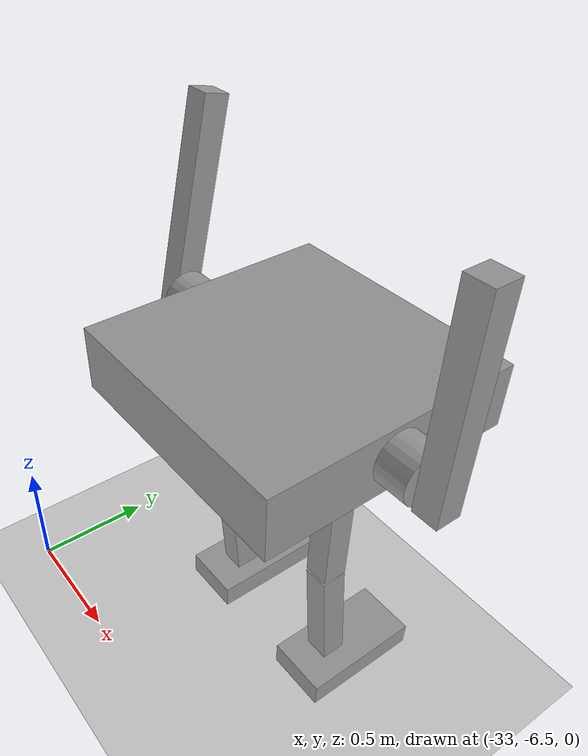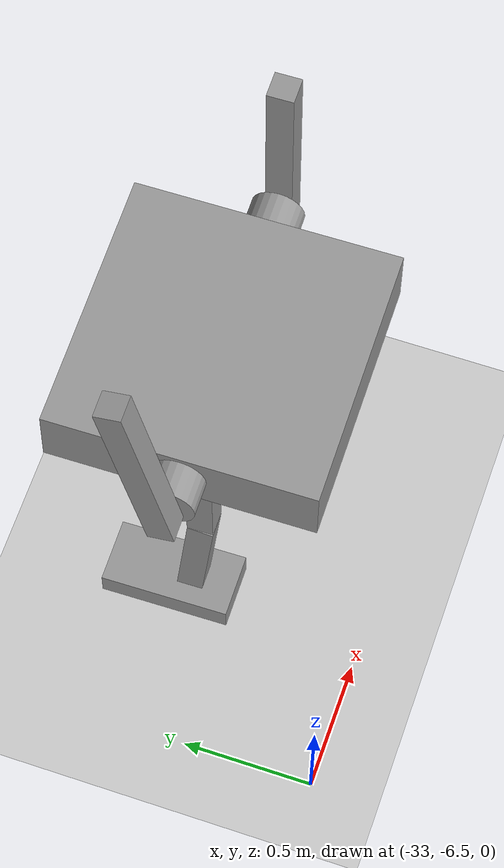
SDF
<sdf version="1.6">
 <world name="default">
  <model name="ground_plane">
   <static>1</static>
   <link name="link">
    <collision name="collision">
     <geometry><plane><normal>0 0 1</normal><size>100 100</size></plane></geometry>
     <surface><friction><ode><mu>100</mu><mu2>50</mu2></ode></friction></surface>
    </collision>
    <visual name="visual">
     <cast_shadows>0</cast_shadows>
     <geometry><plane><normal>0 0 1</normal><size>100 100</size></plane></geometry>
     <material>
      <script><uri>file://media/materials/scripts/gazebo.material</uri><name>Gazebo/Grey</name></script>
     </material>
    </visual>
   </link>
  </model>
  <model name="HumanoidRobot">
   <link name="link_0_clone">
    <inertial>
     <mass>1</mass>
     <inertia>
      <ixx>0.166667</ixx>
      <ixy>0</ixy>
      <ixz>0</ixz>
      <iyy>0.166667</iyy>
      <iyz>0</iyz>
      <izz>0.166667</izz>
     </inertia>
    </inertial>
    <pose>-0.226663 0.03903 0.1625 0 -0 0</pose>
    <visual name="visual">
     <geometry><box><size>0.25 0.5 0.1</size></box></geometry>
     <material>
      <lighting>1</lighting>
      <script><uri>file://media/materials/scripts/gazebo.material</uri><name>Gazebo/Grey</name></script>
      <shader type="pixel"><normal_map>__default__</normal_map></shader>
      <ambient>0.3 0.3 0.3 1</ambient>
      <diffuse>0.7 0.7 0.7 1</diffuse>
      <specular>0.01 0.01 0.01 1</specular>
      <emissive>0 0 0 1</emissive>
     </material>
    </visual>
    <collision name="collision">
     <geometry><box><size>0.25 0.5 0.1</size></box></geometry>
     <surface>
      <friction>
       <ode><mu>1</mu><mu2>1</mu2><fdir1>0 0 0</fdir1><slip1>0</slip1><slip2>0</slip2></ode>
       <torsional>
        <coefficient>1</coefficient>
        <patch_radius>0</patch_radius>
        <surface_radius>0</surface_radius>
        <use_patch_radius>1</use_patch_radius>
        <ode><slip>0</slip></ode>
       </torsional>
      </friction>
      <bounce><restitution_coefficient>0</restitution_coefficient><threshold>1e+06</threshold></bounce>
      <contact>
       <collide_without_contact>0</collide_without_contact>
       <collide_without_contact_bitmask>1</collide_without_contact_bitmask>
       <collide_bitmask>1</collide_bitmask>
       <ode>
        <soft_cfm>0</soft_cfm>
        <soft_erp>0.2</soft_erp>
        <kp>1e+13</kp>
        <kd>1</kd>
        <max_vel>0.01</max_vel>
        <min_depth>0</min_depth>
       </ode>
       <bullet>
        <split_impulse>1</split_impulse>
        <split_impulse_penetration_threshold>-0.01</split_impulse_penetration_threshold>
        <soft_cfm>0</soft_cfm>
        <soft_erp>0.2</soft_erp>
        <kp>1e+13</kp>
        <kd>1</kd>
       </bullet>
      </contact>
     </surface>
    </collision>
   </link>
   <link name="link_0_clone_0">
    <inertial>
     <mass>1</mass>
     <inertia>
      <ixx>0.166667</ixx>
      <ixy>0</ixy>
      <ixz>0</ixz>
      <iyy>0.166667</iyy>
      <iyz>0</iyz>
      <izz>0.166667</izz>
     </inertia>
    </inertial>
    <pose>0.373337 0.03903 0.1625 0 -0 0</pose>
    <visual name="visual">
     <geometry><box><size>0.25 0.5 0.1</size></box></geometry>
     <material>
      <lighting>1</lighting>
      <script><uri>file://media/materials/scripts/gazebo.material</uri><name>Gazebo/Grey</name></script>
      <shader type="pixel"><normal_map>__default__</normal_map></shader>
      <ambient>0.3 0.3 0.3 1</ambient>
      <diffuse>0.7 0.7 0.7 1</diffuse>
      <specular>0.01 0.01 0.01 1</specular>
      <emissive>0 0 0 1</emissive>
     </material>
    </visual>
    <collision name="collision">
     <geometry><box><size>0.25 0.5 0.1</size></box></geometry>
     <surface>
      <friction>
       <ode><mu>1</mu><mu2>1</mu2><fdir1>0 0 0</fdir1><slip1>0</slip1><slip2>0</slip2></ode>
       <torsional>
        <coefficient>1</coefficient>
        <patch_radius>0</patch_radius>
        <surface_radius>0</surface_radius>
        <use_patch_radius>1</use_patch_radius>
        <ode><slip>0</slip></ode>
       </torsional>
      </friction>
      <bounce><restitution_coefficient>0</restitution_coefficient><threshold>1e+06</threshold></bounce>
      <contact>
       <collide_without_contact>0</collide_without_contact>
       <collide_without_contact_bitmask>1</collide_without_contact_bitmask>
       <collide_bitmask>1</collide_bitmask>
       <ode>
        <soft_cfm>0</soft_cfm>
        <soft_erp>0.2</soft_erp>
        <kp>1e+13</kp>
        <kd>1</kd>
        <max_vel>0.01</max_vel>
        <min_depth>0</min_depth>
       </ode>
       <bullet>
        <split_impulse>1</split_impulse>
        <split_impulse_penetration_threshold>-0.01</split_impulse_penetration_threshold>
        <soft_cfm>0</soft_cfm>
        <soft_erp>0.2</soft_erp>
        <kp>1e+13</kp>
        <kd>1</kd>
       </bullet>
      </contact>
     </surface>
    </collision>
   </link>
   <link name="link_0_clone_1">
    <inertial>
     <mass>1</mass>
     <inertia>
      <ixx>0.166667</ixx>
      <ixy>0</ixy>
      <ixz>0</ixz>
      <iyy>0.166667</iyy>
      <iyz>0</iyz>
      <izz>0.166667</izz>
     </inertia>
    </inertial>
    <pose>0.355188 -0.06097 0.412308 0.1 -0 0</pose>
    <visual name="visual">
     <geometry><box><size>0.1 0.1 0.6</size></box></geometry>
     <material>
      <lighting>1</lighting>
      <script><uri>file://media/materials/scripts/gazebo.material</uri><name>Gazebo/Grey</name></script>
      <shader type="pixel"><normal_map>__default__</normal_map></shader>
      <ambient>0.3 0.3 0.3 1</ambient>
      <diffuse>0.7 0.7 0.7 1</diffuse>
      <specular>0.01 0.01 0.01 1</specular>
      <emissive>0 0 0 1</emissive>
     </material>
    </visual>
    <collision name="collision">
     <geometry><box><size>0.1 0.1 0.6</size></box></geometry>
     <surface>
      <friction>
       <ode><mu>1</mu><mu2>1</mu2><fdir1>0 0 0</fdir1><slip1>0</slip1><slip2>0</slip2></ode>
       <torsional>
        <coefficient>1</coefficient>
        <patch_radius>0</patch_radius>
        <surface_radius>0</surface_radius>
        <use_patch_radius>1</use_patch_radius>
        <ode><slip>0</slip></ode>
       </torsional>
      </friction>
      <bounce><restitution_coefficient>0</restitution_coefficient><threshold>1e+06</threshold></bounce>
      <contact>
       <collide_without_contact>0</collide_without_contact>
       <collide_without_contact_bitmask>1</collide_without_contact_bitmask>
       <collide_bitmask>1</collide_bitmask>
       <ode>
        <soft_cfm>0</soft_cfm>
        <soft_erp>0.2</soft_erp>
        <kp>1e+13</kp>
        <kd>1</kd>
        <max_vel>0.01</max_vel>
        <min_depth>0</min_depth>
       </ode>
       <bullet>
        <split_impulse>1</split_impulse>
        <split_impulse_penetration_threshold>-0.01</split_impulse_penetration_threshold>
        <soft_cfm>0</soft_cfm>
        <soft_erp>0.2</soft_erp>
        <kp>1e+13</kp>
        <kd>1</kd>
       </bullet>
      </contact>
     </surface>
    </collision>
   </link>
   <link name="link_0_clone_1_clone">
    <inertial>
     <mass>1</mass>
     <inertia>
      <ixx>0.166667</ixx>
      <ixy>0</ixy>
      <ixz>0</ixz>
      <iyy>0.166667</iyy>
      <iyz>0</iyz>
      <izz>0.166667</izz>
     </inertia>
    </inertial>
    <pose>0.355186 -0.090803 1.01909 0 -0 0</pose>
    <visual name="visual">
     <geometry><box><size>0.1 0.1 0.6</size></box></geometry>
     <material>
      <lighting>1</lighting>
      <script><uri>file://media/materials/scripts/gazebo.material</uri><name>Gazebo/Grey</name></script>
      <shader type="pixel"><normal_map>__default__</normal_map></shader>
      <ambient>0.3 0.3 0.3 1</ambient>
      <diffuse>0.7 0.7 0.7 1</diffuse>
      <specular>0.01 0.01 0.01 1</specular>
      <emissive>0 0 0 1</emissive>
     </material>
    </visual>
    <collision name="collision">
     <geometry><box><size>0.1 0.1 0.6</size></box></geometry>
     <surface>
      <friction>
       <ode><mu>1</mu><mu2>1</mu2><fdir1>0 0 0</fdir1><slip1>0</slip1><slip2>0</slip2></ode>
       <torsional>
        <coefficient>1</coefficient>
        <patch_radius>0</patch_radius>
        <surface_radius>0</surface_radius>
        <use_patch_radius>1</use_patch_radius>
        <ode><slip>0</slip></ode>
       </torsional>
      </friction>
      <bounce><restitution_coefficient>0</restitution_coefficient><threshold>1e+06</threshold></bounce>
      <contact>
       <collide_without_contact>0</collide_without_contact>
       <collide_without_contact_bitmask>1</collide_without_contact_bitmask>
       <collide_bitmask>1</collide_bitmask>
       <ode>
        <soft_cfm>0</soft_cfm>
        <soft_erp>0.2</soft_erp>
        <kp>1e+13</kp>
        <kd>1</kd>
        <max_vel>0.01</max_vel>
        <min_depth>0</min_depth>
       </ode>
       <bullet>
        <split_impulse>1</split_impulse>
        <split_impulse_penetration_threshold>-0.01</split_impulse_penetration_threshold>
        <soft_cfm>0</soft_cfm>
        <soft_erp>0.2</soft_erp>
        <kp>1e+13</kp>
        <kd>1</kd>
       </bullet>
      </contact>
     </surface>
    </collision>
   </link>
   <link name="link_0_clone_1_clone_0">
    <inertial>
     <mass>1</mass>
     <inertia>
      <ixx>0.166667</ixx>
      <ixy>0</ixy>
      <ixz>0</ixz>
      <iyy>0.166667</iyy>
      <iyz>0</iyz>
      <izz>0.166667</izz>
     </inertia>
    </inertial>
    <pose>-0.226658 -0.090799 1.01928 0 -0 0</pose>
    <visual name="visual">
     <geometry><box><size>0.1 0.1 0.6</size></box></geometry>
     <material>
      <lighting>1</lighting>
      <script><uri>file://media/materials/scripts/gazebo.material</uri><name>Gazebo/Grey</name></script>
      <shader type="pixel"><normal_map>__default__</normal_map></shader>
      <ambient>0.3 0.3 0.3 1</ambient>
      <diffuse>0.7 0.7 0.7 1</diffuse>
      <specular>0.01 0.01 0.01 1</specular>
      <emissive>0 0 0 1</emissive>
     </material>
    </visual>
    <collision name="collision">
     <geometry><box><size>0.1 0.1 0.6</size></box></geometry>
     <surface>
      <friction>
       <ode><mu>1</mu><mu2>1</mu2><fdir1>0 0 0</fdir1><slip1>0</slip1><slip2>0</slip2></ode>
       <torsional>
        <coefficient>1</coefficient>
        <patch_radius>0</patch_radius>
        <surface_radius>0</surface_radius>
        <use_patch_radius>1</use_patch_radius>
        <ode><slip>0</slip></ode>
       </torsional>
      </friction>
      <bounce><restitution_coefficient>0</restitution_coefficient><threshold>1e+06</threshold></bounce>
      <contact>
       <collide_without_contact>0</collide_without_contact>
       <collide_without_contact_bitmask>1</collide_without_contact_bitmask>
       <collide_bitmask>1</collide_bitmask>
       <ode>
        <soft_cfm>0</soft_cfm>
        <soft_erp>0.2</soft_erp>
        <kp>1e+13</kp>
        <kd>1</kd>
        <max_vel>0.01</max_vel>
        <min_depth>0</min_depth>
       </ode>
       <bullet>
        <split_impulse>1</split_impulse>
        <split_impulse_penetration_threshold>-0.01</split_impulse_penetration_threshold>
        <soft_cfm>0</soft_cfm>
        <soft_erp>0.2</soft_erp>
        <kp>1e+13</kp>
        <kd>1</kd>
       </bullet>
      </contact>
     </surface>
    </collision>
   </link>
   <link name="link_0_clone_1_clone_clone_clone_0">
    <inertial>
     <mass>1</mass>
     <inertia>
      <ixx>0.166667</ixx>
      <ixy>0</ixy>
      <ixz>0</ixz>
      <iyy>0.166667</iyy>
      <iyz>0</iyz>
      <izz>0.166667</izz>
     </inertia>
    </inertial>
    <pose>0.748362 -0.07674 1.75145 0 -0 0</pose>
    <visual name="visual">
     <geometry><box><size>0.1 0.1 0.8</size></box></geometry>
     <material>
      <lighting>1</lighting>
      <script><uri>file://media/materials/scripts/gazebo.material</uri><name>Gazebo/Grey</name></script>
      <shader type="pixel"><normal_map>__default__</normal_map></shader>
      <ambient>0.3 0.3 0.3 1</ambient>
      <diffuse>0.7 0.7 0.7 1</diffuse>
      <specular>0.01 0.01 0.01 1</specular>
      <emissive>0 0 0 1</emissive>
     </material>
    </visual>
    <collision name="collision">
     <geometry><box><size>0.1 0.1 0.8</size></box></geometry>
     <surface>
      <friction>
       <ode><mu>1</mu><mu2>1</mu2><fdir1>0 0 0</fdir1><slip1>0</slip1><slip2>0</slip2></ode>
       <torsional>
        <coefficient>1</coefficient>
        <patch_radius>0</patch_radius>
        <surface_radius>0</surface_radius>
        <use_patch_radius>1</use_patch_radius>
        <ode><slip>0</slip></ode>
       </torsional>
      </friction>
      <bounce><restitution_coefficient>0</restitution_coefficient><threshold>1e+06</threshold></bounce>
      <contact>
       <collide_without_contact>0</collide_without_contact>
       <collide_without_contact_bitmask>1</collide_without_contact_bitmask>
       <collide_bitmask>1</collide_bitmask>
       <ode>
        <soft_cfm>0</soft_cfm>
        <soft_erp>0.2</soft_erp>
        <kp>1e+13</kp>
        <kd>1</kd>
        <max_vel>0.01</max_vel>
        <min_depth>0</min_depth>
       </ode>
       <bullet>
        <split_impulse>1</split_impulse>
        <split_impulse_penetration_threshold>-0.01</split_impulse_penetration_threshold>
        <soft_cfm>0</soft_cfm>
        <soft_erp>0.2</soft_erp>
        <kp>1e+13</kp>
        <kd>1</kd>
       </bullet>
      </contact>
     </surface>
    </collision>
   </link>
   <link name="link_0_clone_1_clone_clone_clone_0_clone">
    <inertial>
     <mass>1</mass>
     <inertia>
      <ixx>0.166667</ixx>
      <ixy>0</ixy>
      <ixz>0</ixz>
      <iyy>0.166667</iyy>
      <iyz>0</iyz>
      <izz>0.166667</izz>
     </inertia>
    </inertial>
    <pose>-0.601678 -0.00674 1.79145 -0.2 0 0</pose>
    <visual name="visual">
     <geometry><box><size>0.1 0.1 0.8</size></box></geometry>
     <material>
      <lighting>1</lighting>
      <script><uri>file://media/materials/scripts/gazebo.material</uri><name>Gazebo/Grey</name></script>
      <shader type="pixel"><normal_map>__default__</normal_map></shader>
      <ambient>0.3 0.3 0.3 1</ambient>
      <diffuse>0.7 0.7 0.7 1</diffuse>
      <specular>0.01 0.01 0.01 1</specular>
      <emissive>0 0 0 1</emissive>
     </material>
    </visual>
    <collision name="collision">
     <geometry><box><size>0.1 0.1 0.8</size></box></geometry>
     <surface>
      <friction>
       <ode><mu>1</mu><mu2>1</mu2><fdir1>0 0 0</fdir1><slip1>0</slip1><slip2>0</slip2></ode>
       <torsional>
        <coefficient>1</coefficient>
        <patch_radius>0</patch_radius>
        <surface_radius>0</surface_radius>
        <use_patch_radius>1</use_patch_radius>
        <ode><slip>0</slip></ode>
       </torsional>
      </friction>
      <bounce><restitution_coefficient>0</restitution_coefficient><threshold>1e+06</threshold></bounce>
      <contact>
       <collide_without_contact>0</collide_without_contact>
       <collide_without_contact_bitmask>1</collide_without_contact_bitmask>
       <collide_bitmask>1</collide_bitmask>
       <ode>
        <soft_cfm>0</soft_cfm>
        <soft_erp>0.2</soft_erp>
        <kp>1e+13</kp>
        <kd>1</kd>
        <max_vel>0.01</max_vel>
        <min_depth>0</min_depth>
       </ode>
       <bullet>
        <split_impulse>1</split_impulse>
        <split_impulse_penetration_threshold>-0.01</split_impulse_penetration_threshold>
        <soft_cfm>0</soft_cfm>
        <soft_erp>0.2</soft_erp>
        <kp>1e+13</kp>
        <kd>1</kd>
       </bullet>
      </contact>
     </surface>
    </collision>
   </link>
   <link name="link_0_clone_2">
    <inertial>
     <mass>1</mass>
     <inertia>
      <ixx>0.166667</ixx>
      <ixy>0</ixy>
      <ixz>0</ixz>
      <iyy>0.166667</iyy>
      <iyz>0</iyz>
      <izz>0.166667</izz>
     </inertia>
    </inertial>
    <pose>-0.226663 -0.06097 0.4125 0.1 -0 0</pose>
    <visual name="visual">
     <geometry><box><size>0.1 0.1 0.6</size></box></geometry>
     <material>
      <lighting>1</lighting>
      <script><uri>file://media/materials/scripts/gazebo.material</uri><name>Gazebo/Grey</name></script>
      <shader type="pixel"><normal_map>__default__</normal_map></shader>
      <ambient>0.3 0.3 0.3 1</ambient>
      <diffuse>0.7 0.7 0.7 1</diffuse>
      <specular>0.01 0.01 0.01 1</specular>
      <emissive>0 0 0 1</emissive>
     </material>
    </visual>
    <collision name="collision">
     <geometry><box><size>0.1 0.1 0.6</size></box></geometry>
     <surface>
      <friction>
       <ode><mu>1</mu><mu2>1</mu2><fdir1>0 0 0</fdir1><slip1>0</slip1><slip2>0</slip2></ode>
       <torsional>
        <coefficient>1</coefficient>
        <patch_radius>0</patch_radius>
        <surface_radius>0</surface_radius>
        <use_patch_radius>1</use_patch_radius>
        <ode><slip>0</slip></ode>
       </torsional>
      </friction>
      <bounce><restitution_coefficient>0</restitution_coefficient><threshold>1e+06</threshold></bounce>
      <contact>
       <collide_without_contact>0</collide_without_contact>
       <collide_without_contact_bitmask>1</collide_without_contact_bitmask>
       <collide_bitmask>1</collide_bitmask>
       <ode>
        <soft_cfm>0</soft_cfm>
        <soft_erp>0.2</soft_erp>
        <kp>1e+13</kp>
        <kd>1</kd>
        <max_vel>0.01</max_vel>
        <min_depth>0</min_depth>
       </ode>
       <bullet>
        <split_impulse>1</split_impulse>
        <split_impulse_penetration_threshold>-0.01</split_impulse_penetration_threshold>
        <soft_cfm>0</soft_cfm>
        <soft_erp>0.2</soft_erp>
        <kp>1e+13</kp>
        <kd>1</kd>
       </bullet>
      </contact>
     </surface>
    </collision>
   </link>
   <link name="link_1">
    <inertial>
     <mass>1</mass>
     <inertia>
      <ixx>0.166667</ixx>
      <ixy>0</ixy>
      <ixz>0</ixz>
      <iyy>0.166667</iyy>
      <iyz>0</iyz>
      <izz>0.166667</izz>
     </inertia>
    </inertial>
    <pose>0.073342 -0.076669 1.44489 0.009447 1e-06 0.000191</pose>
    <visual name="visual">
     <geometry><box><size>1 1 0.25</size></box></geometry>
     <material>
      <lighting>1</lighting>
      <script><uri>file://media/materials/scripts/gazebo.material</uri><name>Gazebo/Grey</name></script>
      <shader type="pixel"><normal_map>__default__</normal_map></shader>
      <ambient>0.3 0.3 0.3 1</ambient>
      <diffuse>0.7 0.7 0.7 1</diffuse>
      <specular>0.01 0.01 0.01 1</specular>
      <emissive>0 0 0 1</emissive>
     </material>
    </visual>
    <collision name="collision">
     <geometry><box><size>1 1 0.25</size></box></geometry>
     <surface>
      <friction>
       <ode><mu>1</mu><mu2>1</mu2><fdir1>0 0 0</fdir1><slip1>0</slip1><slip2>0</slip2></ode>
       <torsional>
        <coefficient>1</coefficient>
        <patch_radius>0</patch_radius>
        <surface_radius>0</surface_radius>
        <use_patch_radius>1</use_patch_radius>
        <ode><slip>0</slip></ode>
       </torsional>
      </friction>
      <bounce><restitution_coefficient>0</restitution_coefficient><threshold>1e+06</threshold></bounce>
      <contact>
       <collide_without_contact>0</collide_without_contact>
       <collide_without_contact_bitmask>1</collide_without_contact_bitmask>
       <collide_bitmask>1</collide_bitmask>
       <ode>
        <soft_cfm>0</soft_cfm>
        <soft_erp>0.2</soft_erp>
        <kp>1e+13</kp>
        <kd>1</kd>
        <max_vel>0.01</max_vel>
        <min_depth>0</min_depth>
       </ode>
       <bullet>
        <split_impulse>1</split_impulse>
        <split_impulse_penetration_threshold>-0.01</split_impulse_penetration_threshold>
        <soft_cfm>0</soft_cfm>
        <soft_erp>0.2</soft_erp>
        <kp>1e+13</kp>
        <kd>1</kd>
       </bullet>
      </contact>
     </surface>
    </collision>
   </link>
   <link name="link_2_clone_clone">
    <inertial>
     <mass>1</mass>
     <inertia><ixx>0.145833</ixx><ixy>0</ixy><ixz>0</ixz><iyy>0.145833</iyy><iyz>0</iyz><izz>0.125</izz></inertia>
    </inertial>
    <pose>0.073342 -0.07674 1.45239 1.5708 -0.009446 1.57099</pose>
    <visual name="visual">
     <geometry><cylinder><radius>0.1</radius><length>1.25</length></cylinder></geometry>
     <material>
      <lighting>1</lighting>
      <script><uri>file://media/materials/scripts/gazebo.material</uri><name>Gazebo/Grey</name></script>
      <shader type="pixel"><normal_map>__default__</normal_map></shader>
      <ambient>0.3 0.3 0.3 1</ambient>
      <diffuse>0.7 0.7 0.7 1</diffuse>
      <specular>0.01 0.01 0.01 1</specular>
      <emissive>0 0 0 1</emissive>
     </material>
    </visual>
    <collision name="collision">
     <geometry><cylinder><radius>0.1</radius><length>1.25</length></cylinder></geometry>
     <surface>
      <friction>
       <ode><mu>1</mu><mu2>1</mu2><fdir1>0 0 0</fdir1><slip1>0</slip1><slip2>0</slip2></ode>
       <torsional>
        <coefficient>1</coefficient>
        <patch_radius>0</patch_radius>
        <surface_radius>0</surface_radius>
        <use_patch_radius>1</use_patch_radius>
        <ode><slip>0</slip></ode>
       </torsional>
      </friction>
      <bounce><restitution_coefficient>0</restitution_coefficient><threshold>1e+06</threshold></bounce>
      <contact>
       <collide_without_contact>0</collide_without_contact>
       <collide_without_contact_bitmask>1</collide_without_contact_bitmask>
       <collide_bitmask>1</collide_bitmask>
       <ode>
        <soft_cfm>0</soft_cfm>
        <soft_erp>0.2</soft_erp>
        <kp>1e+13</kp>
        <kd>1</kd>
        <max_vel>0.01</max_vel>
        <min_depth>0</min_depth>
       </ode>
       <bullet>
        <split_impulse>1</split_impulse>
        <split_impulse_penetration_threshold>-0.01</split_impulse_penetration_threshold>
        <soft_cfm>0</soft_cfm>
        <soft_erp>0.2</soft_erp>
        <kp>1e+13</kp>
        <kd>1</kd>
       </bullet>
      </contact>
     </surface>
    </collision>
   </link>
   <joint name="link_0_clone_0_JOINT_0" type="fixed">
    <parent>link_0_clone_0</parent>
    <child>link_0_clone_1</child>
    <physics>
     <ode><limit><cfm>0</cfm><erp>0.2</erp></limit><suspension><cfm>0</cfm><erp>0.2</erp></suspension></ode>
    </physics>
   </joint>
   <joint name="link_0_clone_1_JOINT_1" type="fixed">
    <parent>link_0_clone_1</parent>
    <child>link_0_clone_1_clone</child>
    <physics>
     <ode><limit><cfm>0</cfm><erp>0.2</erp></limit><suspension><cfm>0</cfm><erp>0.2</erp></suspension></ode>
    </physics>
   </joint>
   <joint name="link_0_clone_1_clone_0_JOINT_3" type="fixed">
    <parent>link_0_clone_1_clone_0</parent>
    <child>link_1</child>
    <physics>
     <ode><limit><cfm>0</cfm><erp>0.2</erp></limit><suspension><cfm>0</cfm><erp>0.2</erp></suspension></ode>
    </physics>
   </joint>
   <joint name="link_0_clone_1_clone_JOINT_9" type="fixed">
    <parent>link_0_clone_1_clone</parent>
    <child>link_1</child>
    <physics>
     <ode><limit><cfm>0</cfm><erp>0.2</erp></limit><suspension><cfm>0</cfm><erp>0.2</erp></suspension></ode>
    </physics>
   </joint>
   <joint name="link_0_clone_2_JOINT_2" type="fixed">
    <parent>link_0_clone_2</parent>
    <child>link_0_clone_1_clone_0</child>
    <physics>
     <ode><limit><cfm>0</cfm><erp>0.2</erp></limit><suspension><cfm>0</cfm><erp>0.2</erp></suspension></ode>
    </physics>
   </joint>
   <joint name="link_0_clone_JOINT_2" type="fixed">
    <parent>link_0_clone</parent>
    <child>link_0_clone_2</child>
    <physics>
     <ode><limit><cfm>0</cfm><erp>0.2</erp></limit><suspension><cfm>0</cfm><erp>0.2</erp></suspension></ode>
    </physics>
   </joint>
   <joint name="link_1_JOINT_4" type="fixed">
    <parent>link_1</parent>
    <child>link_2_clone_clone</child>
    <physics>
     <ode><limit><cfm>0</cfm><erp>0.2</erp></limit><suspension><cfm>0</cfm><erp>0.2</erp></suspension></ode>
    </physics>
   </joint>
   <joint name="link_2_clone_clone_JOINT_5" type="revolute">
    <parent>link_2_clone_clone</parent>
    <child>link_0_clone_1_clone_clone_clone_0</child>
    <pose>0 0 -0.3 0 -0 0</pose>
    <axis>
     <xyz>1 0.03 0</xyz>
     <use_parent_model_frame>0</use_parent_model_frame>
     <limit>
      <lower>-1.79769e+308</lower>
      <upper>1.79769e+308</upper>
      <effort>-1</effort>
      <velocity>-1</velocity>
     </limit>
     <dynamics>
      <spring_reference>0</spring_reference>
      <spring_stiffness>0</spring_stiffness>
      <damping>0.1</damping>
      <friction>0.2</friction>
     </dynamics>
    </axis>
    <physics>
     <ode><limit><cfm>0</cfm><erp>0.2</erp></limit><suspension><cfm>0</cfm><erp>0.2</erp></suspension></ode>
    </physics>
   </joint>
   <joint name="link_2_clone_clone_JOINT_6" type="revolute">
    <parent>link_2_clone_clone</parent>
    <child>link_0_clone_1_clone_clone_clone_0_clone</child>
    <pose>0 0 -0.3 0 -0 0</pose>
    <axis>
     <xyz>1 0 0</xyz>
     <use_parent_model_frame>0</use_parent_model_frame>
     <limit>
      <lower>-1.79769e+308</lower>
      <upper>1.79769e+308</upper>
      <effort>-1</effort>
      <velocity>-1</velocity>
     </limit>
     <dynamics>
      <spring_reference>0</spring_reference>
      <spring_stiffness>0</spring_stiffness>
      <damping>0.1</damping>
      <friction>0</friction>
     </dynamics>
    </axis>
    <physics>
     <ode><limit><cfm>0</cfm><erp>0.2</erp></limit><suspension><cfm>0</cfm><erp>0.2</erp></suspension></ode>
    </physics>
   </joint>
   <static>0</static>
   <pose>-32.1418 -5.77516 -0.109667 -0.009355 -0.000323 0.013549</pose>
  </model>
 </world>
</sdf>
